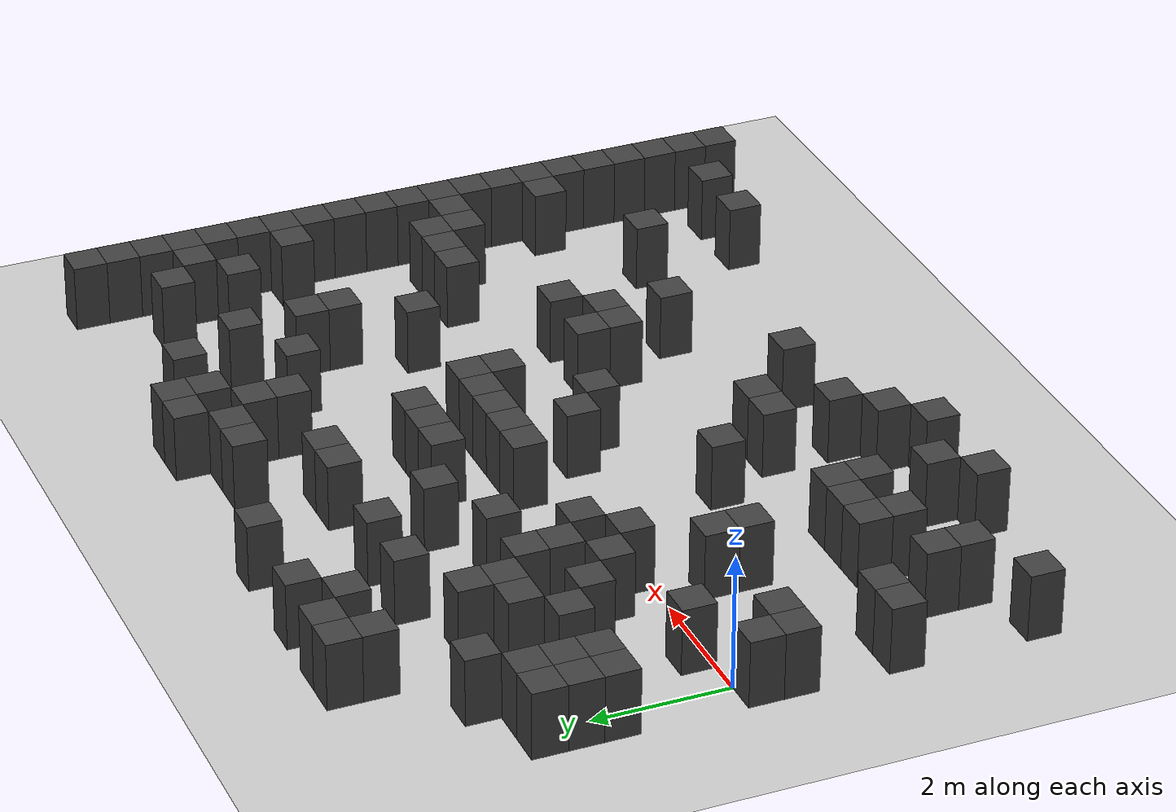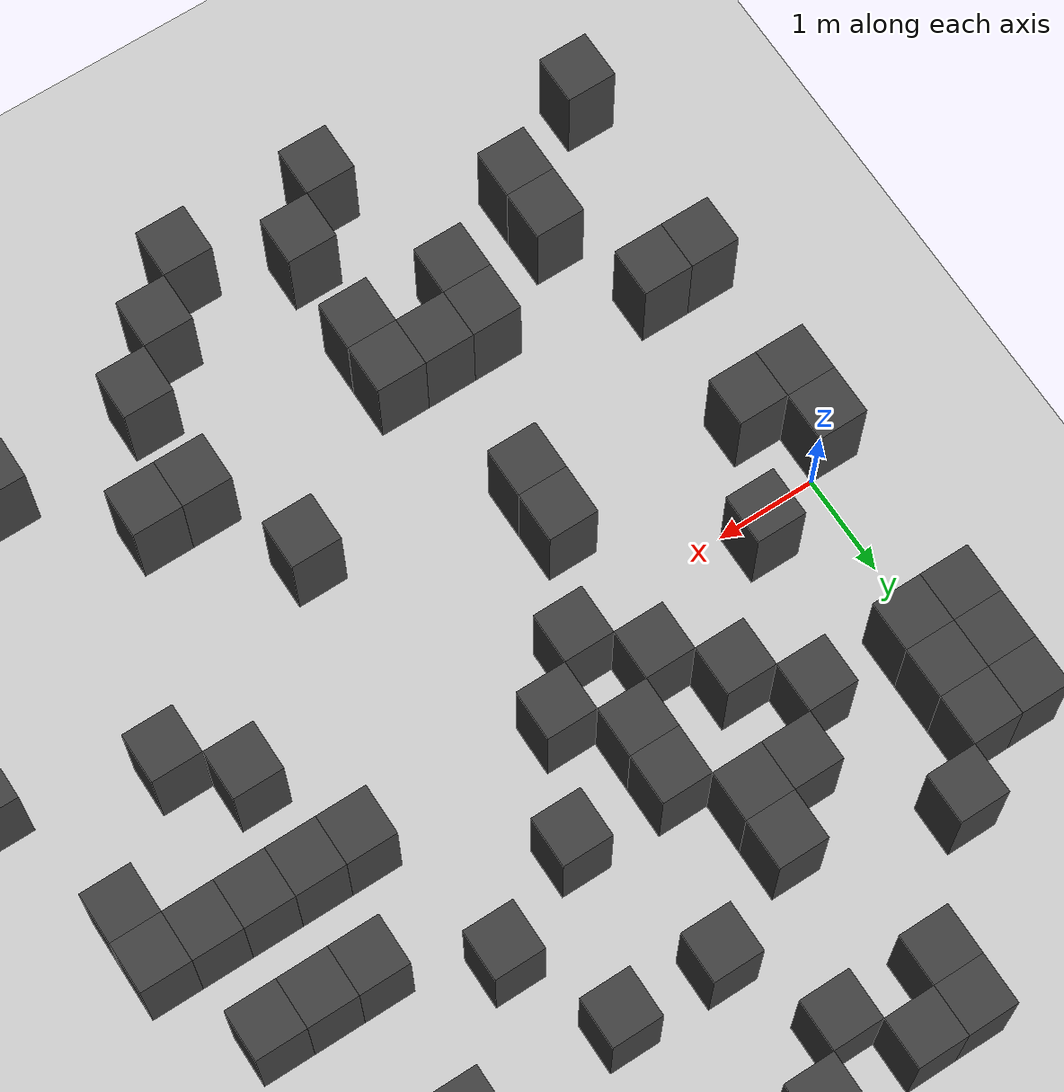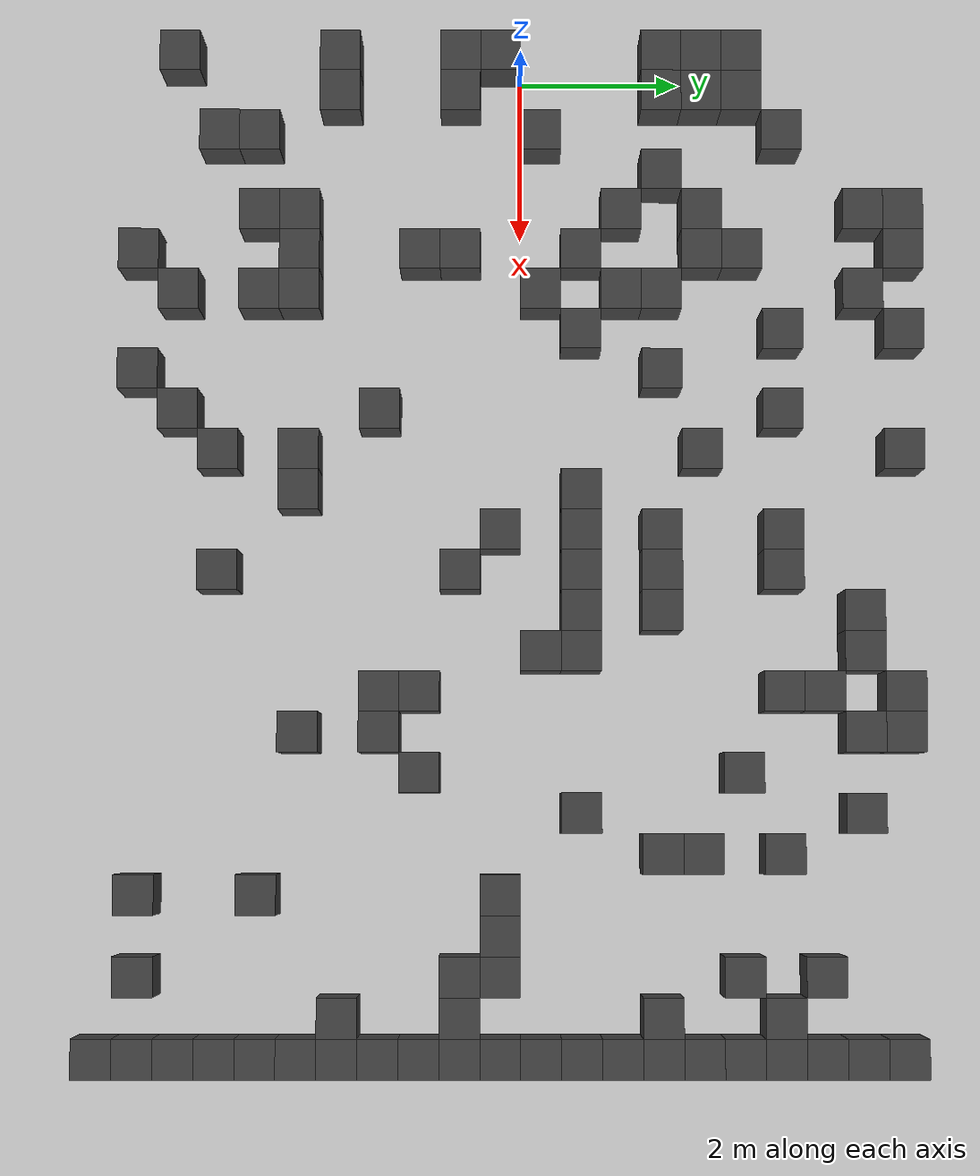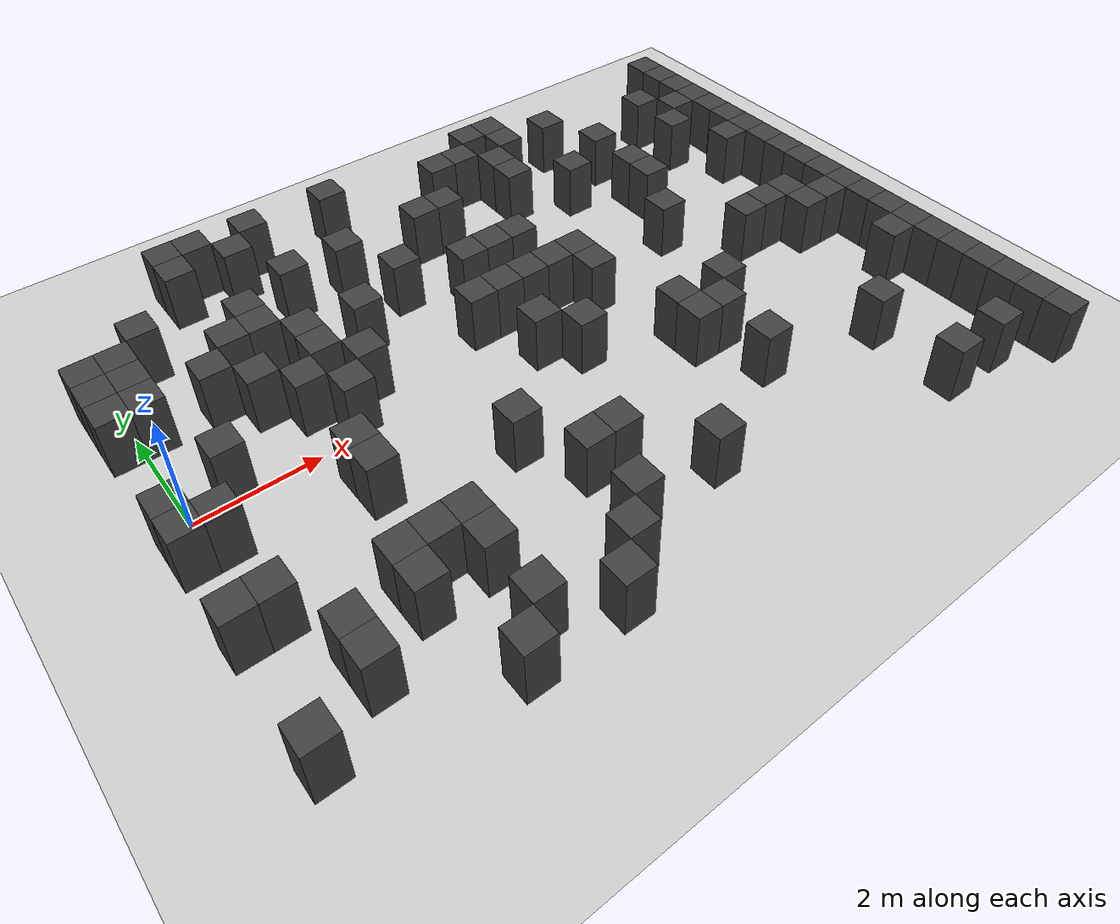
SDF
<sdf version="1.7">
 <world name="map_4557">
  <model name="ground_plane">
   <static>true</static>
   <link name="link">
    <collision name="collision">
     <geometry><plane><normal>0 0 1</normal><size>200 200</size></plane></geometry>
    </collision>
    <visual name="visual">
     <geometry><plane><normal>0 0 1</normal><size>200 200</size></plane></geometry>
     <material><ambient>0.8 0.8 0.8 1</ambient><diffuse>0.8 0.8 0.8 1</diffuse></material>
    </visual>
   </link>
  </model>
  <model name="maze_environment">
   <static>true</static>
   <link name="wall_236">
    <pose>1.750 4.750 0.500 0 0 0</pose>
    <collision name="col"><geometry><box><size>0.5 0.5 1.0</size></box></geometry></collision>
    <visual name="vis">
     <geometry><box><size>0.5 0.5 1.0</size></box></geometry>
     <material><ambient>0.15 0.15 0.15 1</ambient><diffuse>0.25 0.25 0.25 1</diffuse></material>
    </visual>
   </link>
   <link name="wall_237">
    <pose>2.250 4.750 0.500 0 0 0</pose>
    <collision name="col"><geometry><box><size>0.5 0.5 1.0</size></box></geometry></collision>
    <visual name="vis">
     <geometry><box><size>0.5 0.5 1.0</size></box></geometry>
     <material><ambient>0.15 0.15 0.15 1</ambient><diffuse>0.25 0.25 0.25 1</diffuse></material>
    </visual>
   </link>
   <link name="wall_238">
    <pose>3.250 4.750 0.500 0 0 0</pose>
    <collision name="col"><geometry><box><size>0.5 0.5 1.0</size></box></geometry></collision>
    <visual name="vis">
     <geometry><box><size>0.5 0.5 1.0</size></box></geometry>
     <material><ambient>0.15 0.15 0.15 1</ambient><diffuse>0.25 0.25 0.25 1</diffuse></material>
    </visual>
   </link>
   <link name="wall_239">
    <pose>4.750 4.750 0.500 0 0 0</pose>
    <collision name="col"><geometry><box><size>0.5 0.5 1.0</size></box></geometry></collision>
    <visual name="vis">
     <geometry><box><size>0.5 0.5 1.0</size></box></geometry>
     <material><ambient>0.15 0.15 0.15 1</ambient><diffuse>0.25 0.25 0.25 1</diffuse></material>
    </visual>
   </link>
   <link name="wall_240">
    <pose>7.750 4.750 0.500 0 0 0</pose>
    <collision name="col"><geometry><box><size>0.5 0.5 1.0</size></box></geometry></collision>
    <visual name="vis">
     <geometry><box><size>0.5 0.5 1.0</size></box></geometry>
     <material><ambient>0.15 0.15 0.15 1</ambient><diffuse>0.25 0.25 0.25 1</diffuse></material>
    </visual>
   </link>
   <link name="wall_241">
    <pose>8.250 4.750 0.500 0 0 0</pose>
    <collision name="col"><geometry><box><size>0.5 0.5 1.0</size></box></geometry></collision>
    <visual name="vis">
     <geometry><box><size>0.5 0.5 1.0</size></box></geometry>
     <material><ambient>0.15 0.15 0.15 1</ambient><diffuse>0.25 0.25 0.25 1</diffuse></material>
    </visual>
   </link>
   <link name="wall_242">
    <pose>12.250 4.750 0.500 0 0 0</pose>
    <collision name="col"><geometry><box><size>0.5 0.5 1.0</size></box></geometry></collision>
    <visual name="vis">
     <geometry><box><size>0.5 0.5 1.0</size></box></geometry>
     <material><ambient>0.15 0.15 0.15 1</ambient><diffuse>0.25 0.25 0.25 1</diffuse></material>
    </visual>
   </link>
   <link name="wall_249">
    <pose>1.750 4.250 0.500 0 0 0</pose>
    <collision name="col"><geometry><box><size>0.5 0.5 1.0</size></box></geometry></collision>
    <visual name="vis">
     <geometry><box><size>0.5 0.5 1.0</size></box></geometry>
     <material><ambient>0.15 0.15 0.15 1</ambient><diffuse>0.25 0.25 0.25 1</diffuse></material>
    </visual>
   </link>
   <link name="wall_250">
    <pose>2.750 4.250 0.500 0 0 0</pose>
    <collision name="col"><geometry><box><size>0.5 0.5 1.0</size></box></geometry></collision>
    <visual name="vis">
     <geometry><box><size>0.5 0.5 1.0</size></box></geometry>
     <material><ambient>0.15 0.15 0.15 1</ambient><diffuse>0.25 0.25 0.25 1</diffuse></material>
    </visual>
   </link>
   <link name="wall_251">
    <pose>6.750 4.250 0.500 0 0 0</pose>
    <collision name="col"><geometry><box><size>0.5 0.5 1.0</size></box></geometry></collision>
    <visual name="vis">
     <geometry><box><size>0.5 0.5 1.0</size></box></geometry>
     <material><ambient>0.15 0.15 0.15 1</ambient><diffuse>0.25 0.25 0.25 1</diffuse></material>
    </visual>
   </link>
   <link name="wall_252">
    <pose>7.250 4.250 0.500 0 0 0</pose>
    <collision name="col"><geometry><box><size>0.5 0.5 1.0</size></box></geometry></collision>
    <visual name="vis">
     <geometry><box><size>0.5 0.5 1.0</size></box></geometry>
     <material><ambient>0.15 0.15 0.15 1</ambient><diffuse>0.25 0.25 0.25 1</diffuse></material>
    </visual>
   </link>
   <link name="wall_253">
    <pose>8.250 4.250 0.500 0 0 0</pose>
    <collision name="col"><geometry><box><size>0.5 0.5 1.0</size></box></geometry></collision>
    <visual name="vis">
     <geometry><box><size>0.5 0.5 1.0</size></box></geometry>
     <material><ambient>0.15 0.15 0.15 1</ambient><diffuse>0.25 0.25 0.25 1</diffuse></material>
    </visual>
   </link>
   <link name="wall_254">
    <pose>9.250 4.250 0.500 0 0 0</pose>
    <collision name="col"><geometry><box><size>0.5 0.5 1.0</size></box></geometry></collision>
    <visual name="vis">
     <geometry><box><size>0.5 0.5 1.0</size></box></geometry>
     <material><ambient>0.15 0.15 0.15 1</ambient><diffuse>0.25 0.25 0.25 1</diffuse></material>
    </visual>
   </link>
   <link name="wall_255">
    <pose>12.250 4.250 0.500 0 0 0</pose>
    <collision name="col"><geometry><box><size>0.5 0.5 1.0</size></box></geometry></collision>
    <visual name="vis">
     <geometry><box><size>0.5 0.5 1.0</size></box></geometry>
     <material><ambient>0.15 0.15 0.15 1</ambient><diffuse>0.25 0.25 0.25 1</diffuse></material>
    </visual>
   </link>
   <link name="wall_265">
    <pose>7.750 3.750 0.500 0 0 0</pose>
    <collision name="col"><geometry><box><size>0.5 0.5 1.0</size></box></geometry></collision>
    <visual name="vis">
     <geometry><box><size>0.5 0.5 1.0</size></box></geometry>
     <material><ambient>0.15 0.15 0.15 1</ambient><diffuse>0.25 0.25 0.25 1</diffuse></material>
    </visual>
   </link>
   <link name="wall_266">
    <pose>11.250 3.750 0.500 0 0 0</pose>
    <collision name="col"><geometry><box><size>0.5 0.5 1.0</size></box></geometry></collision>
    <visual name="vis">
     <geometry><box><size>0.5 0.5 1.0</size></box></geometry>
     <material><ambient>0.15 0.15 0.15 1</ambient><diffuse>0.25 0.25 0.25 1</diffuse></material>
    </visual>
   </link>
   <link name="wall_267">
    <pose>12.250 3.750 0.500 0 0 0</pose>
    <collision name="col"><geometry><box><size>0.5 0.5 1.0</size></box></geometry></collision>
    <visual name="vis">
     <geometry><box><size>0.5 0.5 1.0</size></box></geometry>
     <material><ambient>0.15 0.15 0.15 1</ambient><diffuse>0.25 0.25 0.25 1</diffuse></material>
    </visual>
   </link>
   <link name="wall_277">
    <pose>0.750 3.250 0.500 0 0 0</pose>
    <collision name="col"><geometry><box><size>0.5 0.5 1.0</size></box></geometry></collision>
    <visual name="vis">
     <geometry><box><size>0.5 0.5 1.0</size></box></geometry>
     <material><ambient>0.15 0.15 0.15 1</ambient><diffuse>0.25 0.25 0.25 1</diffuse></material>
    </visual>
   </link>
   <link name="wall_278">
    <pose>3.250 3.250 0.500 0 0 0</pose>
    <collision name="col"><geometry><box><size>0.5 0.5 1.0</size></box></geometry></collision>
    <visual name="vis">
     <geometry><box><size>0.5 0.5 1.0</size></box></geometry>
     <material><ambient>0.15 0.15 0.15 1</ambient><diffuse>0.25 0.25 0.25 1</diffuse></material>
    </visual>
   </link>
   <link name="wall_279">
    <pose>4.250 3.250 0.500 0 0 0</pose>
    <collision name="col"><geometry><box><size>0.5 0.5 1.0</size></box></geometry></collision>
    <visual name="vis">
     <geometry><box><size>0.5 0.5 1.0</size></box></geometry>
     <material><ambient>0.15 0.15 0.15 1</ambient><diffuse>0.25 0.25 0.25 1</diffuse></material>
    </visual>
   </link>
   <link name="wall_280">
    <pose>5.750 3.250 0.500 0 0 0</pose>
    <collision name="col"><geometry><box><size>0.5 0.5 1.0</size></box></geometry></collision>
    <visual name="vis">
     <geometry><box><size>0.5 0.5 1.0</size></box></geometry>
     <material><ambient>0.15 0.15 0.15 1</ambient><diffuse>0.25 0.25 0.25 1</diffuse></material>
    </visual>
   </link>
   <link name="wall_281">
    <pose>6.250 3.250 0.500 0 0 0</pose>
    <collision name="col"><geometry><box><size>0.5 0.5 1.0</size></box></geometry></collision>
    <visual name="vis">
     <geometry><box><size>0.5 0.5 1.0</size></box></geometry>
     <material><ambient>0.15 0.15 0.15 1</ambient><diffuse>0.25 0.25 0.25 1</diffuse></material>
    </visual>
   </link>
   <link name="wall_282">
    <pose>7.750 3.250 0.500 0 0 0</pose>
    <collision name="col"><geometry><box><size>0.5 0.5 1.0</size></box></geometry></collision>
    <visual name="vis">
     <geometry><box><size>0.5 0.5 1.0</size></box></geometry>
     <material><ambient>0.15 0.15 0.15 1</ambient><diffuse>0.25 0.25 0.25 1</diffuse></material>
    </visual>
   </link>
   <link name="wall_283">
    <pose>9.750 3.250 0.500 0 0 0</pose>
    <collision name="col"><geometry><box><size>0.5 0.5 1.0</size></box></geometry></collision>
    <visual name="vis">
     <geometry><box><size>0.5 0.5 1.0</size></box></geometry>
     <material><ambient>0.15 0.15 0.15 1</ambient><diffuse>0.25 0.25 0.25 1</diffuse></material>
    </visual>
   </link>
   <link name="wall_284">
    <pose>11.750 3.250 0.500 0 0 0</pose>
    <collision name="col"><geometry><box><size>0.5 0.5 1.0</size></box></geometry></collision>
    <visual name="vis">
     <geometry><box><size>0.5 0.5 1.0</size></box></geometry>
     <material><ambient>0.15 0.15 0.15 1</ambient><diffuse>0.25 0.25 0.25 1</diffuse></material>
    </visual>
   </link>
   <link name="wall_285">
    <pose>12.250 3.250 0.500 0 0 0</pose>
    <collision name="col"><geometry><box><size>0.5 0.5 1.0</size></box></geometry></collision>
    <visual name="vis">
     <geometry><box><size>0.5 0.5 1.0</size></box></geometry>
     <material><ambient>0.15 0.15 0.15 1</ambient><diffuse>0.25 0.25 0.25 1</diffuse></material>
    </visual>
   </link>
   <link name="wall_293">
    <pose>-0.250 2.750 0.500 0 0 0</pose>
    <collision name="col"><geometry><box><size>0.5 0.5 1.0</size></box></geometry></collision>
    <visual name="vis">
     <geometry><box><size>0.5 0.5 1.0</size></box></geometry>
     <material><ambient>0.15 0.15 0.15 1</ambient><diffuse>0.25 0.25 0.25 1</diffuse></material>
    </visual>
   </link>
   <link name="wall_294">
    <pose>0.250 2.750 0.500 0 0 0</pose>
    <collision name="col"><geometry><box><size>0.5 0.5 1.0</size></box></geometry></collision>
    <visual name="vis">
     <geometry><box><size>0.5 0.5 1.0</size></box></geometry>
     <material><ambient>0.15 0.15 0.15 1</ambient><diffuse>0.25 0.25 0.25 1</diffuse></material>
    </visual>
   </link>
   <link name="wall_295">
    <pose>2.250 2.750 0.500 0 0 0</pose>
    <collision name="col"><geometry><box><size>0.5 0.5 1.0</size></box></geometry></collision>
    <visual name="vis">
     <geometry><box><size>0.5 0.5 1.0</size></box></geometry>
     <material><ambient>0.15 0.15 0.15 1</ambient><diffuse>0.25 0.25 0.25 1</diffuse></material>
    </visual>
   </link>
   <link name="wall_296">
    <pose>8.750 2.750 0.500 0 0 0</pose>
    <collision name="col"><geometry><box><size>0.5 0.5 1.0</size></box></geometry></collision>
    <visual name="vis">
     <geometry><box><size>0.5 0.5 1.0</size></box></geometry>
     <material><ambient>0.15 0.15 0.15 1</ambient><diffuse>0.25 0.25 0.25 1</diffuse></material>
    </visual>
   </link>
   <link name="wall_297">
    <pose>11.250 2.750 0.500 0 0 0</pose>
    <collision name="col"><geometry><box><size>0.5 0.5 1.0</size></box></geometry></collision>
    <visual name="vis">
     <geometry><box><size>0.5 0.5 1.0</size></box></geometry>
     <material><ambient>0.15 0.15 0.15 1</ambient><diffuse>0.25 0.25 0.25 1</diffuse></material>
    </visual>
   </link>
   <link name="wall_298">
    <pose>12.250 2.750 0.500 0 0 0</pose>
    <collision name="col"><geometry><box><size>0.5 0.5 1.0</size></box></geometry></collision>
    <visual name="vis">
     <geometry><box><size>0.5 0.5 1.0</size></box></geometry>
     <material><ambient>0.15 0.15 0.15 1</ambient><diffuse>0.25 0.25 0.25 1</diffuse></material>
    </visual>
   </link>
   <link name="wall_306">
    <pose>-0.250 2.250 0.500 0 0 0</pose>
    <collision name="col"><geometry><box><size>0.5 0.5 1.0</size></box></geometry></collision>
    <visual name="vis">
     <geometry><box><size>0.5 0.5 1.0</size></box></geometry>
     <material><ambient>0.15 0.15 0.15 1</ambient><diffuse>0.25 0.25 0.25 1</diffuse></material>
    </visual>
   </link>
   <link name="wall_307">
    <pose>0.250 2.250 0.500 0 0 0</pose>
    <collision name="col"><geometry><box><size>0.5 0.5 1.0</size></box></geometry></collision>
    <visual name="vis">
     <geometry><box><size>0.5 0.5 1.0</size></box></geometry>
     <material><ambient>0.15 0.15 0.15 1</ambient><diffuse>0.25 0.25 0.25 1</diffuse></material>
    </visual>
   </link>
   <link name="wall_308">
    <pose>1.750 2.250 0.500 0 0 0</pose>
    <collision name="col"><geometry><box><size>0.5 0.5 1.0</size></box></geometry></collision>
    <visual name="vis">
     <geometry><box><size>0.5 0.5 1.0</size></box></geometry>
     <material><ambient>0.15 0.15 0.15 1</ambient><diffuse>0.25 0.25 0.25 1</diffuse></material>
    </visual>
   </link>
   <link name="wall_309">
    <pose>2.250 2.250 0.500 0 0 0</pose>
    <collision name="col"><geometry><box><size>0.5 0.5 1.0</size></box></geometry></collision>
    <visual name="vis">
     <geometry><box><size>0.5 0.5 1.0</size></box></geometry>
     <material><ambient>0.15 0.15 0.15 1</ambient><diffuse>0.25 0.25 0.25 1</diffuse></material>
    </visual>
   </link>
   <link name="wall_310">
    <pose>4.750 2.250 0.500 0 0 0</pose>
    <collision name="col"><geometry><box><size>0.5 0.5 1.0</size></box></geometry></collision>
    <visual name="vis">
     <geometry><box><size>0.5 0.5 1.0</size></box></geometry>
     <material><ambient>0.15 0.15 0.15 1</ambient><diffuse>0.25 0.25 0.25 1</diffuse></material>
    </visual>
   </link>
   <link name="wall_311">
    <pose>9.750 2.250 0.500 0 0 0</pose>
    <collision name="col"><geometry><box><size>0.5 0.5 1.0</size></box></geometry></collision>
    <visual name="vis">
     <geometry><box><size>0.5 0.5 1.0</size></box></geometry>
     <material><ambient>0.15 0.15 0.15 1</ambient><diffuse>0.25 0.25 0.25 1</diffuse></material>
    </visual>
   </link>
   <link name="wall_312">
    <pose>12.250 2.250 0.500 0 0 0</pose>
    <collision name="col"><geometry><box><size>0.5 0.5 1.0</size></box></geometry></collision>
    <visual name="vis">
     <geometry><box><size>0.5 0.5 1.0</size></box></geometry>
     <material><ambient>0.15 0.15 0.15 1</ambient><diffuse>0.25 0.25 0.25 1</diffuse></material>
    </visual>
   </link>
   <link name="wall_324">
    <pose>-0.250 1.750 0.500 0 0 0</pose>
    <collision name="col"><geometry><box><size>0.5 0.5 1.0</size></box></geometry></collision>
    <visual name="vis">
     <geometry><box><size>0.5 0.5 1.0</size></box></geometry>
     <material><ambient>0.15 0.15 0.15 1</ambient><diffuse>0.25 0.25 0.25 1</diffuse></material>
    </visual>
   </link>
   <link name="wall_325">
    <pose>0.250 1.750 0.500 0 0 0</pose>
    <collision name="col"><geometry><box><size>0.5 0.5 1.0</size></box></geometry></collision>
    <visual name="vis">
     <geometry><box><size>0.5 0.5 1.0</size></box></geometry>
     <material><ambient>0.15 0.15 0.15 1</ambient><diffuse>0.25 0.25 0.25 1</diffuse></material>
    </visual>
   </link>
   <link name="wall_326">
    <pose>1.250 1.750 0.500 0 0 0</pose>
    <collision name="col"><geometry><box><size>0.5 0.5 1.0</size></box></geometry></collision>
    <visual name="vis">
     <geometry><box><size>0.5 0.5 1.0</size></box></geometry>
     <material><ambient>0.15 0.15 0.15 1</ambient><diffuse>0.25 0.25 0.25 1</diffuse></material>
    </visual>
   </link>
   <link name="wall_327">
    <pose>2.750 1.750 0.500 0 0 0</pose>
    <collision name="col"><geometry><box><size>0.5 0.5 1.0</size></box></geometry></collision>
    <visual name="vis">
     <geometry><box><size>0.5 0.5 1.0</size></box></geometry>
     <material><ambient>0.15 0.15 0.15 1</ambient><diffuse>0.25 0.25 0.25 1</diffuse></material>
    </visual>
   </link>
   <link name="wall_328">
    <pose>3.750 1.750 0.500 0 0 0</pose>
    <collision name="col"><geometry><box><size>0.5 0.5 1.0</size></box></geometry></collision>
    <visual name="vis">
     <geometry><box><size>0.5 0.5 1.0</size></box></geometry>
     <material><ambient>0.15 0.15 0.15 1</ambient><diffuse>0.25 0.25 0.25 1</diffuse></material>
    </visual>
   </link>
   <link name="wall_329">
    <pose>5.750 1.750 0.500 0 0 0</pose>
    <collision name="col"><geometry><box><size>0.5 0.5 1.0</size></box></geometry></collision>
    <visual name="vis">
     <geometry><box><size>0.5 0.5 1.0</size></box></geometry>
     <material><ambient>0.15 0.15 0.15 1</ambient><diffuse>0.25 0.25 0.25 1</diffuse></material>
    </visual>
   </link>
   <link name="wall_330">
    <pose>6.250 1.750 0.500 0 0 0</pose>
    <collision name="col"><geometry><box><size>0.5 0.5 1.0</size></box></geometry></collision>
    <visual name="vis">
     <geometry><box><size>0.5 0.5 1.0</size></box></geometry>
     <material><ambient>0.15 0.15 0.15 1</ambient><diffuse>0.25 0.25 0.25 1</diffuse></material>
    </visual>
   </link>
   <link name="wall_331">
    <pose>6.750 1.750 0.500 0 0 0</pose>
    <collision name="col"><geometry><box><size>0.5 0.5 1.0</size></box></geometry></collision>
    <visual name="vis">
     <geometry><box><size>0.5 0.5 1.0</size></box></geometry>
     <material><ambient>0.15 0.15 0.15 1</ambient><diffuse>0.25 0.25 0.25 1</diffuse></material>
    </visual>
   </link>
   <link name="wall_332">
    <pose>9.750 1.750 0.500 0 0 0</pose>
    <collision name="col"><geometry><box><size>0.5 0.5 1.0</size></box></geometry></collision>
    <visual name="vis">
     <geometry><box><size>0.5 0.5 1.0</size></box></geometry>
     <material><ambient>0.15 0.15 0.15 1</ambient><diffuse>0.25 0.25 0.25 1</diffuse></material>
    </visual>
   </link>
   <link name="wall_333">
    <pose>11.750 1.750 0.500 0 0 0</pose>
    <collision name="col"><geometry><box><size>0.5 0.5 1.0</size></box></geometry></collision>
    <visual name="vis">
     <geometry><box><size>0.5 0.5 1.0</size></box></geometry>
     <material><ambient>0.15 0.15 0.15 1</ambient><diffuse>0.25 0.25 0.25 1</diffuse></material>
    </visual>
   </link>
   <link name="wall_334">
    <pose>12.250 1.750 0.500 0 0 0</pose>
    <collision name="col"><geometry><box><size>0.5 0.5 1.0</size></box></geometry></collision>
    <visual name="vis">
     <geometry><box><size>0.5 0.5 1.0</size></box></geometry>
     <material><ambient>0.15 0.15 0.15 1</ambient><diffuse>0.25 0.25 0.25 1</diffuse></material>
    </visual>
   </link>
   <link name="wall_340">
    <pose>1.750 1.250 0.500 0 0 0</pose>
    <collision name="col"><geometry><box><size>0.5 0.5 1.0</size></box></geometry></collision>
    <visual name="vis">
     <geometry><box><size>0.5 0.5 1.0</size></box></geometry>
     <material><ambient>0.15 0.15 0.15 1</ambient><diffuse>0.25 0.25 0.25 1</diffuse></material>
    </visual>
   </link>
   <link name="wall_341">
    <pose>2.750 1.250 0.500 0 0 0</pose>
    <collision name="col"><geometry><box><size>0.5 0.5 1.0</size></box></geometry></collision>
    <visual name="vis">
     <geometry><box><size>0.5 0.5 1.0</size></box></geometry>
     <material><ambient>0.15 0.15 0.15 1</ambient><diffuse>0.25 0.25 0.25 1</diffuse></material>
    </visual>
   </link>
   <link name="wall_342">
    <pose>12.250 1.250 0.500 0 0 0</pose>
    <collision name="col"><geometry><box><size>0.5 0.5 1.0</size></box></geometry></collision>
    <visual name="vis">
     <geometry><box><size>0.5 0.5 1.0</size></box></geometry>
     <material><ambient>0.15 0.15 0.15 1</ambient><diffuse>0.25 0.25 0.25 1</diffuse></material>
    </visual>
   </link>
   <link name="wall_346">
    <pose>2.250 0.750 0.500 0 0 0</pose>
    <collision name="col"><geometry><box><size>0.5 0.5 1.0</size></box></geometry></collision>
    <visual name="vis">
     <geometry><box><size>0.5 0.5 1.0</size></box></geometry>
     <material><ambient>0.15 0.15 0.15 1</ambient><diffuse>0.25 0.25 0.25 1</diffuse></material>
    </visual>
   </link>
   <link name="wall_347">
    <pose>3.250 0.750 0.500 0 0 0</pose>
    <collision name="col"><geometry><box><size>0.5 0.5 1.0</size></box></geometry></collision>
    <visual name="vis">
     <geometry><box><size>0.5 0.5 1.0</size></box></geometry>
     <material><ambient>0.15 0.15 0.15 1</ambient><diffuse>0.25 0.25 0.25 1</diffuse></material>
    </visual>
   </link>
   <link name="wall_348">
    <pose>5.250 0.750 0.500 0 0 0</pose>
    <collision name="col"><geometry><box><size>0.5 0.5 1.0</size></box></geometry></collision>
    <visual name="vis">
     <geometry><box><size>0.5 0.5 1.0</size></box></geometry>
     <material><ambient>0.15 0.15 0.15 1</ambient><diffuse>0.25 0.25 0.25 1</diffuse></material>
    </visual>
   </link>
   <link name="wall_349">
    <pose>5.750 0.750 0.500 0 0 0</pose>
    <collision name="col"><geometry><box><size>0.5 0.5 1.0</size></box></geometry></collision>
    <visual name="vis">
     <geometry><box><size>0.5 0.5 1.0</size></box></geometry>
     <material><ambient>0.15 0.15 0.15 1</ambient><diffuse>0.25 0.25 0.25 1</diffuse></material>
    </visual>
   </link>
   <link name="wall_350">
    <pose>6.250 0.750 0.500 0 0 0</pose>
    <collision name="col"><geometry><box><size>0.5 0.5 1.0</size></box></geometry></collision>
    <visual name="vis">
     <geometry><box><size>0.5 0.5 1.0</size></box></geometry>
     <material><ambient>0.15 0.15 0.15 1</ambient><diffuse>0.25 0.25 0.25 1</diffuse></material>
    </visual>
   </link>
   <link name="wall_351">
    <pose>6.750 0.750 0.500 0 0 0</pose>
    <collision name="col"><geometry><box><size>0.5 0.5 1.0</size></box></geometry></collision>
    <visual name="vis">
     <geometry><box><size>0.5 0.5 1.0</size></box></geometry>
     <material><ambient>0.15 0.15 0.15 1</ambient><diffuse>0.25 0.25 0.25 1</diffuse></material>
    </visual>
   </link>
   <link name="wall_352">
    <pose>7.250 0.750 0.500 0 0 0</pose>
    <collision name="col"><geometry><box><size>0.5 0.5 1.0</size></box></geometry></collision>
    <visual name="vis">
     <geometry><box><size>0.5 0.5 1.0</size></box></geometry>
     <material><ambient>0.15 0.15 0.15 1</ambient><diffuse>0.25 0.25 0.25 1</diffuse></material>
    </visual>
   </link>
   <link name="wall_353">
    <pose>9.250 0.750 0.500 0 0 0</pose>
    <collision name="col"><geometry><box><size>0.5 0.5 1.0</size></box></geometry></collision>
    <visual name="vis">
     <geometry><box><size>0.5 0.5 1.0</size></box></geometry>
     <material><ambient>0.15 0.15 0.15 1</ambient><diffuse>0.25 0.25 0.25 1</diffuse></material>
    </visual>
   </link>
   <link name="wall_354">
    <pose>12.250 0.750 0.500 0 0 0</pose>
    <collision name="col"><geometry><box><size>0.5 0.5 1.0</size></box></geometry></collision>
    <visual name="vis">
     <geometry><box><size>0.5 0.5 1.0</size></box></geometry>
     <material><ambient>0.15 0.15 0.15 1</ambient><diffuse>0.25 0.25 0.25 1</diffuse></material>
    </visual>
   </link>
   <link name="wall_359">
    <pose>0.750 0.250 0.500 0 0 0</pose>
    <collision name="col"><geometry><box><size>0.5 0.5 1.0</size></box></geometry></collision>
    <visual name="vis">
     <geometry><box><size>0.5 0.5 1.0</size></box></geometry>
     <material><ambient>0.15 0.15 0.15 1</ambient><diffuse>0.25 0.25 0.25 1</diffuse></material>
    </visual>
   </link>
   <link name="wall_360">
    <pose>2.750 0.250 0.500 0 0 0</pose>
    <collision name="col"><geometry><box><size>0.5 0.5 1.0</size></box></geometry></collision>
    <visual name="vis">
     <geometry><box><size>0.5 0.5 1.0</size></box></geometry>
     <material><ambient>0.15 0.15 0.15 1</ambient><diffuse>0.25 0.25 0.25 1</diffuse></material>
    </visual>
   </link>
   <link name="wall_361">
    <pose>7.250 0.250 0.500 0 0 0</pose>
    <collision name="col"><geometry><box><size>0.5 0.5 1.0</size></box></geometry></collision>
    <visual name="vis">
     <geometry><box><size>0.5 0.5 1.0</size></box></geometry>
     <material><ambient>0.15 0.15 0.15 1</ambient><diffuse>0.25 0.25 0.25 1</diffuse></material>
    </visual>
   </link>
   <link name="wall_362">
    <pose>12.250 0.250 0.500 0 0 0</pose>
    <collision name="col"><geometry><box><size>0.5 0.5 1.0</size></box></geometry></collision>
    <visual name="vis">
     <geometry><box><size>0.5 0.5 1.0</size></box></geometry>
     <material><ambient>0.15 0.15 0.15 1</ambient><diffuse>0.25 0.25 0.25 1</diffuse></material>
    </visual>
   </link>
   <link name="wall_368">
    <pose>-0.250 -0.250 0.500 0 0 0</pose>
    <collision name="col"><geometry><box><size>0.5 0.5 1.0</size></box></geometry></collision>
    <visual name="vis">
     <geometry><box><size>0.5 0.5 1.0</size></box></geometry>
     <material><ambient>0.15 0.15 0.15 1</ambient><diffuse>0.25 0.25 0.25 1</diffuse></material>
    </visual>
   </link>
   <link name="wall_369">
    <pose>5.750 -0.250 0.500 0 0 0</pose>
    <collision name="col"><geometry><box><size>0.5 0.5 1.0</size></box></geometry></collision>
    <visual name="vis">
     <geometry><box><size>0.5 0.5 1.0</size></box></geometry>
     <material><ambient>0.15 0.15 0.15 1</ambient><diffuse>0.25 0.25 0.25 1</diffuse></material>
    </visual>
   </link>
   <link name="wall_370">
    <pose>10.250 -0.250 0.500 0 0 0</pose>
    <collision name="col"><geometry><box><size>0.5 0.5 1.0</size></box></geometry></collision>
    <visual name="vis">
     <geometry><box><size>0.5 0.5 1.0</size></box></geometry>
     <material><ambient>0.15 0.15 0.15 1</ambient><diffuse>0.25 0.25 0.25 1</diffuse></material>
    </visual>
   </link>
   <link name="wall_371">
    <pose>10.750 -0.250 0.500 0 0 0</pose>
    <collision name="col"><geometry><box><size>0.5 0.5 1.0</size></box></geometry></collision>
    <visual name="vis">
     <geometry><box><size>0.5 0.5 1.0</size></box></geometry>
     <material><ambient>0.15 0.15 0.15 1</ambient><diffuse>0.25 0.25 0.25 1</diffuse></material>
    </visual>
   </link>
   <link name="wall_372">
    <pose>11.250 -0.250 0.500 0 0 0</pose>
    <collision name="col"><geometry><box><size>0.5 0.5 1.0</size></box></geometry></collision>
    <visual name="vis">
     <geometry><box><size>0.5 0.5 1.0</size></box></geometry>
     <material><ambient>0.15 0.15 0.15 1</ambient><diffuse>0.25 0.25 0.25 1</diffuse></material>
    </visual>
   </link>
   <link name="wall_373">
    <pose>12.250 -0.250 0.500 0 0 0</pose>
    <collision name="col"><geometry><box><size>0.5 0.5 1.0</size></box></geometry></collision>
    <visual name="vis">
     <geometry><box><size>0.5 0.5 1.0</size></box></geometry>
     <material><ambient>0.15 0.15 0.15 1</ambient><diffuse>0.25 0.25 0.25 1</diffuse></material>
    </visual>
   </link>
   <link name="wall_384">
    <pose>-0.250 -0.750 0.500 0 0 0</pose>
    <collision name="col"><geometry><box><size>0.5 0.5 1.0</size></box></geometry></collision>
    <visual name="vis">
     <geometry><box><size>0.5 0.5 1.0</size></box></geometry>
     <material><ambient>0.15 0.15 0.15 1</ambient><diffuse>0.25 0.25 0.25 1</diffuse></material>
    </visual>
   </link>
   <link name="wall_385">
    <pose>0.250 -0.750 0.500 0 0 0</pose>
    <collision name="col"><geometry><box><size>0.5 0.5 1.0</size></box></geometry></collision>
    <visual name="vis">
     <geometry><box><size>0.5 0.5 1.0</size></box></geometry>
     <material><ambient>0.15 0.15 0.15 1</ambient><diffuse>0.25 0.25 0.25 1</diffuse></material>
    </visual>
   </link>
   <link name="wall_386">
    <pose>2.250 -0.750 0.500 0 0 0</pose>
    <collision name="col"><geometry><box><size>0.5 0.5 1.0</size></box></geometry></collision>
    <visual name="vis">
     <geometry><box><size>0.5 0.5 1.0</size></box></geometry>
     <material><ambient>0.15 0.15 0.15 1</ambient><diffuse>0.25 0.25 0.25 1</diffuse></material>
    </visual>
   </link>
   <link name="wall_387">
    <pose>6.250 -0.750 0.500 0 0 0</pose>
    <collision name="col"><geometry><box><size>0.5 0.5 1.0</size></box></geometry></collision>
    <visual name="vis">
     <geometry><box><size>0.5 0.5 1.0</size></box></geometry>
     <material><ambient>0.15 0.15 0.15 1</ambient><diffuse>0.25 0.25 0.25 1</diffuse></material>
    </visual>
   </link>
   <link name="wall_388">
    <pose>11.250 -0.750 0.500 0 0 0</pose>
    <collision name="col"><geometry><box><size>0.5 0.5 1.0</size></box></geometry></collision>
    <visual name="vis">
     <geometry><box><size>0.5 0.5 1.0</size></box></geometry>
     <material><ambient>0.15 0.15 0.15 1</ambient><diffuse>0.25 0.25 0.25 1</diffuse></material>
    </visual>
   </link>
   <link name="wall_389">
    <pose>11.750 -0.750 0.500 0 0 0</pose>
    <collision name="col"><geometry><box><size>0.5 0.5 1.0</size></box></geometry></collision>
    <visual name="vis">
     <geometry><box><size>0.5 0.5 1.0</size></box></geometry>
     <material><ambient>0.15 0.15 0.15 1</ambient><diffuse>0.25 0.25 0.25 1</diffuse></material>
    </visual>
   </link>
   <link name="wall_390">
    <pose>12.250 -0.750 0.500 0 0 0</pose>
    <collision name="col"><geometry><box><size>0.5 0.5 1.0</size></box></geometry></collision>
    <visual name="vis">
     <geometry><box><size>0.5 0.5 1.0</size></box></geometry>
     <material><ambient>0.15 0.15 0.15 1</ambient><diffuse>0.25 0.25 0.25 1</diffuse></material>
    </visual>
   </link>
   <link name="wall_394">
    <pose>2.250 -1.250 0.500 0 0 0</pose>
    <collision name="col"><geometry><box><size>0.5 0.5 1.0</size></box></geometry></collision>
    <visual name="vis">
     <geometry><box><size>0.5 0.5 1.0</size></box></geometry>
     <material><ambient>0.15 0.15 0.15 1</ambient><diffuse>0.25 0.25 0.25 1</diffuse></material>
    </visual>
   </link>
   <link name="wall_395">
    <pose>7.750 -1.250 0.500 0 0 0</pose>
    <collision name="col"><geometry><box><size>0.5 0.5 1.0</size></box></geometry></collision>
    <visual name="vis">
     <geometry><box><size>0.5 0.5 1.0</size></box></geometry>
     <material><ambient>0.15 0.15 0.15 1</ambient><diffuse>0.25 0.25 0.25 1</diffuse></material>
    </visual>
   </link>
   <link name="wall_396">
    <pose>8.750 -1.250 0.500 0 0 0</pose>
    <collision name="col"><geometry><box><size>0.5 0.5 1.0</size></box></geometry></collision>
    <visual name="vis">
     <geometry><box><size>0.5 0.5 1.0</size></box></geometry>
     <material><ambient>0.15 0.15 0.15 1</ambient><diffuse>0.25 0.25 0.25 1</diffuse></material>
    </visual>
   </link>
   <link name="wall_397">
    <pose>12.250 -1.250 0.500 0 0 0</pose>
    <collision name="col"><geometry><box><size>0.5 0.5 1.0</size></box></geometry></collision>
    <visual name="vis">
     <geometry><box><size>0.5 0.5 1.0</size></box></geometry>
     <material><ambient>0.15 0.15 0.15 1</ambient><diffuse>0.25 0.25 0.25 1</diffuse></material>
    </visual>
   </link>
   <link name="wall_400">
    <pose>4.250 -1.750 0.500 0 0 0</pose>
    <collision name="col"><geometry><box><size>0.5 0.5 1.0</size></box></geometry></collision>
    <visual name="vis">
     <geometry><box><size>0.5 0.5 1.0</size></box></geometry>
     <material><ambient>0.15 0.15 0.15 1</ambient><diffuse>0.25 0.25 0.25 1</diffuse></material>
    </visual>
   </link>
   <link name="wall_401">
    <pose>7.750 -1.750 0.500 0 0 0</pose>
    <collision name="col"><geometry><box><size>0.5 0.5 1.0</size></box></geometry></collision>
    <visual name="vis">
     <geometry><box><size>0.5 0.5 1.0</size></box></geometry>
     <material><ambient>0.15 0.15 0.15 1</ambient><diffuse>0.25 0.25 0.25 1</diffuse></material>
    </visual>
   </link>
   <link name="wall_402">
    <pose>8.250 -1.750 0.500 0 0 0</pose>
    <collision name="col"><geometry><box><size>0.5 0.5 1.0</size></box></geometry></collision>
    <visual name="vis">
     <geometry><box><size>0.5 0.5 1.0</size></box></geometry>
     <material><ambient>0.15 0.15 0.15 1</ambient><diffuse>0.25 0.25 0.25 1</diffuse></material>
    </visual>
   </link>
   <link name="wall_403">
    <pose>12.250 -1.750 0.500 0 0 0</pose>
    <collision name="col"><geometry><box><size>0.5 0.5 1.0</size></box></geometry></collision>
    <visual name="vis">
     <geometry><box><size>0.5 0.5 1.0</size></box></geometry>
     <material><ambient>0.15 0.15 0.15 1</ambient><diffuse>0.25 0.25 0.25 1</diffuse></material>
    </visual>
   </link>
   <link name="wall_409">
    <pose>-0.250 -2.250 0.500 0 0 0</pose>
    <collision name="col"><geometry><box><size>0.5 0.5 1.0</size></box></geometry></collision>
    <visual name="vis">
     <geometry><box><size>0.5 0.5 1.0</size></box></geometry>
     <material><ambient>0.15 0.15 0.15 1</ambient><diffuse>0.25 0.25 0.25 1</diffuse></material>
    </visual>
   </link>
   <link name="wall_410">
    <pose>0.250 -2.250 0.500 0 0 0</pose>
    <collision name="col"><geometry><box><size>0.5 0.5 1.0</size></box></geometry></collision>
    <visual name="vis">
     <geometry><box><size>0.5 0.5 1.0</size></box></geometry>
     <material><ambient>0.15 0.15 0.15 1</ambient><diffuse>0.25 0.25 0.25 1</diffuse></material>
    </visual>
   </link>
   <link name="wall_411">
    <pose>11.750 -2.250 0.500 0 0 0</pose>
    <collision name="col"><geometry><box><size>0.5 0.5 1.0</size></box></geometry></collision>
    <visual name="vis">
     <geometry><box><size>0.5 0.5 1.0</size></box></geometry>
     <material><ambient>0.15 0.15 0.15 1</ambient><diffuse>0.25 0.25 0.25 1</diffuse></material>
    </visual>
   </link>
   <link name="wall_412">
    <pose>12.250 -2.250 0.500 0 0 0</pose>
    <collision name="col"><geometry><box><size>0.5 0.5 1.0</size></box></geometry></collision>
    <visual name="vis">
     <geometry><box><size>0.5 0.5 1.0</size></box></geometry>
     <material><ambient>0.15 0.15 0.15 1</ambient><diffuse>0.25 0.25 0.25 1</diffuse></material>
    </visual>
   </link>
   <link name="wall_421">
    <pose>1.750 -2.750 0.500 0 0 0</pose>
    <collision name="col"><geometry><box><size>0.5 0.5 1.0</size></box></geometry></collision>
    <visual name="vis">
     <geometry><box><size>0.5 0.5 1.0</size></box></geometry>
     <material><ambient>0.15 0.15 0.15 1</ambient><diffuse>0.25 0.25 0.25 1</diffuse></material>
    </visual>
   </link>
   <link name="wall_422">
    <pose>2.250 -2.750 0.500 0 0 0</pose>
    <collision name="col"><geometry><box><size>0.5 0.5 1.0</size></box></geometry></collision>
    <visual name="vis">
     <geometry><box><size>0.5 0.5 1.0</size></box></geometry>
     <material><ambient>0.15 0.15 0.15 1</ambient><diffuse>0.25 0.25 0.25 1</diffuse></material>
    </visual>
   </link>
   <link name="wall_423">
    <pose>2.750 -2.750 0.500 0 0 0</pose>
    <collision name="col"><geometry><box><size>0.5 0.5 1.0</size></box></geometry></collision>
    <visual name="vis">
     <geometry><box><size>0.5 0.5 1.0</size></box></geometry>
     <material><ambient>0.15 0.15 0.15 1</ambient><diffuse>0.25 0.25 0.25 1</diffuse></material>
    </visual>
   </link>
   <link name="wall_424">
    <pose>4.750 -2.750 0.500 0 0 0</pose>
    <collision name="col"><geometry><box><size>0.5 0.5 1.0</size></box></geometry></collision>
    <visual name="vis">
     <geometry><box><size>0.5 0.5 1.0</size></box></geometry>
     <material><ambient>0.15 0.15 0.15 1</ambient><diffuse>0.25 0.25 0.25 1</diffuse></material>
    </visual>
   </link>
   <link name="wall_425">
    <pose>5.250 -2.750 0.500 0 0 0</pose>
    <collision name="col"><geometry><box><size>0.5 0.5 1.0</size></box></geometry></collision>
    <visual name="vis">
     <geometry><box><size>0.5 0.5 1.0</size></box></geometry>
     <material><ambient>0.15 0.15 0.15 1</ambient><diffuse>0.25 0.25 0.25 1</diffuse></material>
    </visual>
   </link>
   <link name="wall_426">
    <pose>8.250 -2.750 0.500 0 0 0</pose>
    <collision name="col"><geometry><box><size>0.5 0.5 1.0</size></box></geometry></collision>
    <visual name="vis">
     <geometry><box><size>0.5 0.5 1.0</size></box></geometry>
     <material><ambient>0.15 0.15 0.15 1</ambient><diffuse>0.25 0.25 0.25 1</diffuse></material>
    </visual>
   </link>
   <link name="wall_427">
    <pose>12.250 -2.750 0.500 0 0 0</pose>
    <collision name="col"><geometry><box><size>0.5 0.5 1.0</size></box></geometry></collision>
    <visual name="vis">
     <geometry><box><size>0.5 0.5 1.0</size></box></geometry>
     <material><ambient>0.15 0.15 0.15 1</ambient><diffuse>0.25 0.25 0.25 1</diffuse></material>
    </visual>
   </link>
   <link name="wall_436">
    <pose>0.750 -3.250 0.500 0 0 0</pose>
    <collision name="col"><geometry><box><size>0.5 0.5 1.0</size></box></geometry></collision>
    <visual name="vis">
     <geometry><box><size>0.5 0.5 1.0</size></box></geometry>
     <material><ambient>0.15 0.15 0.15 1</ambient><diffuse>0.25 0.25 0.25 1</diffuse></material>
    </visual>
   </link>
   <link name="wall_437">
    <pose>1.750 -3.250 0.500 0 0 0</pose>
    <collision name="col"><geometry><box><size>0.5 0.5 1.0</size></box></geometry></collision>
    <visual name="vis">
     <geometry><box><size>0.5 0.5 1.0</size></box></geometry>
     <material><ambient>0.15 0.15 0.15 1</ambient><diffuse>0.25 0.25 0.25 1</diffuse></material>
    </visual>
   </link>
   <link name="wall_438">
    <pose>2.750 -3.250 0.500 0 0 0</pose>
    <collision name="col"><geometry><box><size>0.5 0.5 1.0</size></box></geometry></collision>
    <visual name="vis">
     <geometry><box><size>0.5 0.5 1.0</size></box></geometry>
     <material><ambient>0.15 0.15 0.15 1</ambient><diffuse>0.25 0.25 0.25 1</diffuse></material>
    </visual>
   </link>
   <link name="wall_439">
    <pose>10.250 -3.250 0.500 0 0 0</pose>
    <collision name="col"><geometry><box><size>0.5 0.5 1.0</size></box></geometry></collision>
    <visual name="vis">
     <geometry><box><size>0.5 0.5 1.0</size></box></geometry>
     <material><ambient>0.15 0.15 0.15 1</ambient><diffuse>0.25 0.25 0.25 1</diffuse></material>
    </visual>
   </link>
   <link name="wall_440">
    <pose>12.250 -3.250 0.500 0 0 0</pose>
    <collision name="col"><geometry><box><size>0.5 0.5 1.0</size></box></geometry></collision>
    <visual name="vis">
     <geometry><box><size>0.5 0.5 1.0</size></box></geometry>
     <material><ambient>0.15 0.15 0.15 1</ambient><diffuse>0.25 0.25 0.25 1</diffuse></material>
    </visual>
   </link>
   <link name="wall_446">
    <pose>0.750 -3.750 0.500 0 0 0</pose>
    <collision name="col"><geometry><box><size>0.5 0.5 1.0</size></box></geometry></collision>
    <visual name="vis">
     <geometry><box><size>0.5 0.5 1.0</size></box></geometry>
     <material><ambient>0.15 0.15 0.15 1</ambient><diffuse>0.25 0.25 0.25 1</diffuse></material>
    </visual>
   </link>
   <link name="wall_447">
    <pose>4.750 -3.750 0.500 0 0 0</pose>
    <collision name="col"><geometry><box><size>0.5 0.5 1.0</size></box></geometry></collision>
    <visual name="vis">
     <geometry><box><size>0.5 0.5 1.0</size></box></geometry>
     <material><ambient>0.15 0.15 0.15 1</ambient><diffuse>0.25 0.25 0.25 1</diffuse></material>
    </visual>
   </link>
   <link name="wall_448">
    <pose>6.250 -3.750 0.500 0 0 0</pose>
    <collision name="col"><geometry><box><size>0.5 0.5 1.0</size></box></geometry></collision>
    <visual name="vis">
     <geometry><box><size>0.5 0.5 1.0</size></box></geometry>
     <material><ambient>0.15 0.15 0.15 1</ambient><diffuse>0.25 0.25 0.25 1</diffuse></material>
    </visual>
   </link>
   <link name="wall_449">
    <pose>12.250 -3.750 0.500 0 0 0</pose>
    <collision name="col"><geometry><box><size>0.5 0.5 1.0</size></box></geometry></collision>
    <visual name="vis">
     <geometry><box><size>0.5 0.5 1.0</size></box></geometry>
     <material><ambient>0.15 0.15 0.15 1</ambient><diffuse>0.25 0.25 0.25 1</diffuse></material>
    </visual>
   </link>
   <link name="wall_457">
    <pose>-0.250 -4.250 0.500 0 0 0</pose>
    <collision name="col"><geometry><box><size>0.5 0.5 1.0</size></box></geometry></collision>
    <visual name="vis">
     <geometry><box><size>0.5 0.5 1.0</size></box></geometry>
     <material><ambient>0.15 0.15 0.15 1</ambient><diffuse>0.25 0.25 0.25 1</diffuse></material>
    </visual>
   </link>
   <link name="wall_458">
    <pose>2.750 -4.250 0.500 0 0 0</pose>
    <collision name="col"><geometry><box><size>0.5 0.5 1.0</size></box></geometry></collision>
    <visual name="vis">
     <geometry><box><size>0.5 0.5 1.0</size></box></geometry>
     <material><ambient>0.15 0.15 0.15 1</ambient><diffuse>0.25 0.25 0.25 1</diffuse></material>
    </visual>
   </link>
   <link name="wall_459">
    <pose>4.250 -4.250 0.500 0 0 0</pose>
    <collision name="col"><geometry><box><size>0.5 0.5 1.0</size></box></geometry></collision>
    <visual name="vis">
     <geometry><box><size>0.5 0.5 1.0</size></box></geometry>
     <material><ambient>0.15 0.15 0.15 1</ambient><diffuse>0.25 0.25 0.25 1</diffuse></material>
    </visual>
   </link>
   <link name="wall_460">
    <pose>12.250 -4.250 0.500 0 0 0</pose>
    <collision name="col"><geometry><box><size>0.5 0.5 1.0</size></box></geometry></collision>
    <visual name="vis">
     <geometry><box><size>0.5 0.5 1.0</size></box></geometry>
     <material><ambient>0.15 0.15 0.15 1</ambient><diffuse>0.25 0.25 0.25 1</diffuse></material>
    </visual>
   </link>
   <link name="wall_470">
    <pose>2.250 -4.750 0.500 0 0 0</pose>
    <collision name="col"><geometry><box><size>0.5 0.5 1.0</size></box></geometry></collision>
    <visual name="vis">
     <geometry><box><size>0.5 0.5 1.0</size></box></geometry>
     <material><ambient>0.15 0.15 0.15 1</ambient><diffuse>0.25 0.25 0.25 1</diffuse></material>
    </visual>
   </link>
   <link name="wall_471">
    <pose>3.750 -4.750 0.500 0 0 0</pose>
    <collision name="col"><geometry><box><size>0.5 0.5 1.0</size></box></geometry></collision>
    <visual name="vis">
     <geometry><box><size>0.5 0.5 1.0</size></box></geometry>
     <material><ambient>0.15 0.15 0.15 1</ambient><diffuse>0.25 0.25 0.25 1</diffuse></material>
    </visual>
   </link>
   <link name="wall_472">
    <pose>10.250 -4.750 0.500 0 0 0</pose>
    <collision name="col"><geometry><box><size>0.5 0.5 1.0</size></box></geometry></collision>
    <visual name="vis">
     <geometry><box><size>0.5 0.5 1.0</size></box></geometry>
     <material><ambient>0.15 0.15 0.15 1</ambient><diffuse>0.25 0.25 0.25 1</diffuse></material>
    </visual>
   </link>
   <link name="wall_473">
    <pose>11.250 -4.750 0.500 0 0 0</pose>
    <collision name="col"><geometry><box><size>0.5 0.5 1.0</size></box></geometry></collision>
    <visual name="vis">
     <geometry><box><size>0.5 0.5 1.0</size></box></geometry>
     <material><ambient>0.15 0.15 0.15 1</ambient><diffuse>0.25 0.25 0.25 1</diffuse></material>
    </visual>
   </link>
   <link name="wall_474">
    <pose>12.250 -4.750 0.500 0 0 0</pose>
    <collision name="col"><geometry><box><size>0.5 0.5 1.0</size></box></geometry></collision>
    <visual name="vis">
     <geometry><box><size>0.5 0.5 1.0</size></box></geometry>
     <material><ambient>0.15 0.15 0.15 1</ambient><diffuse>0.25 0.25 0.25 1</diffuse></material>
    </visual>
   </link>
   <link name="wall_491">
    <pose>12.250 -5.250 0.500 0 0 0</pose>
    <collision name="col"><geometry><box><size>0.5 0.5 1.0</size></box></geometry></collision>
    <visual name="vis">
     <geometry><box><size>0.5 0.5 1.0</size></box></geometry>
     <material><ambient>0.15 0.15 0.15 1</ambient><diffuse>0.25 0.25 0.25 1</diffuse></material>
    </visual>
   </link>
  </model>
 </world>
</sdf>
